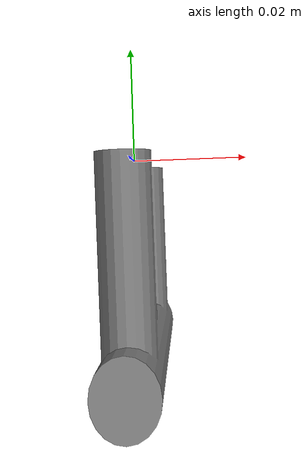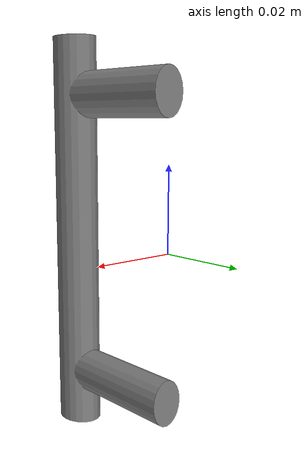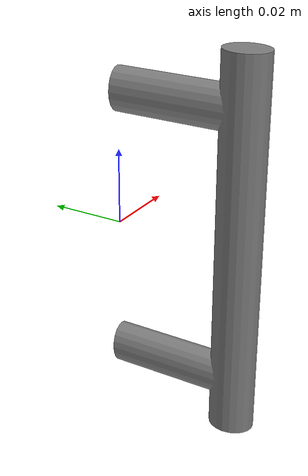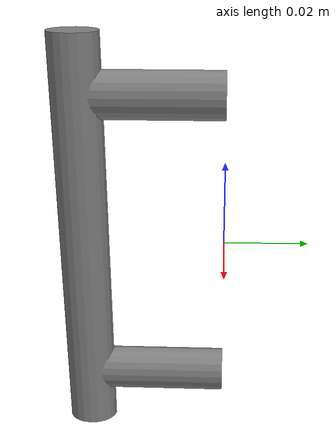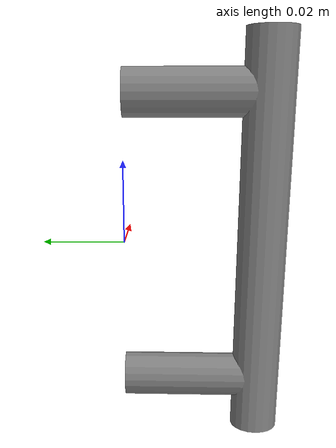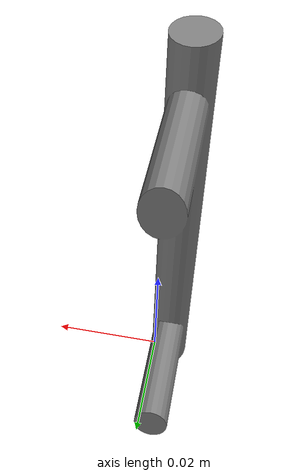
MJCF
<mujoco model="handle_001">
    <compiler angle="radian" autolimits="true" />
    <size />
    <default />
    <asset>
      <mesh name="handle" file="handle_001.obj" />
    </asset>
    <worldbody>
      <body name="model">
        <geom type="mesh" mesh="handle" quat="1 1 0 0 " />

        <!-- grasp site determined with blender -->
        <site name="grasp_site" pos="0 -0.038 0" size="0.001" />
      </body>
    </worldbody>
  </mujoco>
